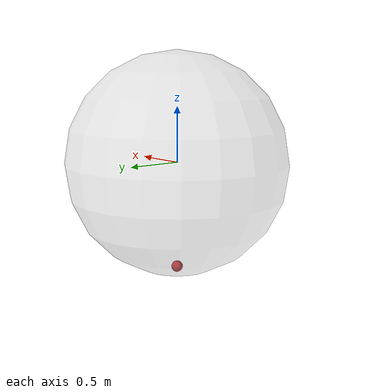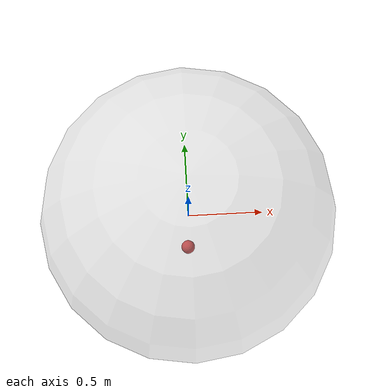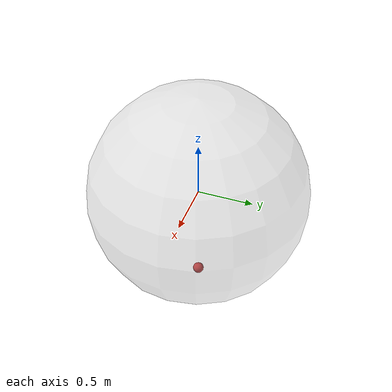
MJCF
<mujoco model="hemisphere_rat">
    <compiler angle="degree" coordinate="local"/>
    <option timestep="0.01" gravity="0 0 -9.81"/>

    <!-- Add the visual section here -->
    <visual>
        <global offwidth="800" offheight="600"/>
    </visual>

    <worldbody>
        <!-- Hemisphere (approximated with a sphere) -->
        <body name="hemisphere" pos="0 0 0">
            <geom type="sphere" size="1" rgba="0.7 0.7 0.7 0.3" contype="1" conaffinity="1"/>
        </body>

        <!-- Rat agent (dynamic body) -->
        <body name="rat" pos="0 0 -0.95">
            <freejoint name="rat_free"/>
            <geom type="sphere" size="0.05" mass="0.1" friction="1 0.005 0.0001" rgba="0.8 0.2 0.2 1"/>
        </body>

        <!-- Light source -->
        <light name="light0" pos="0 0 3" dir="0 0 -1" diffuse="1 1 1" specular="0.3 0.3 0.3"/>
    </worldbody>
</mujoco>
